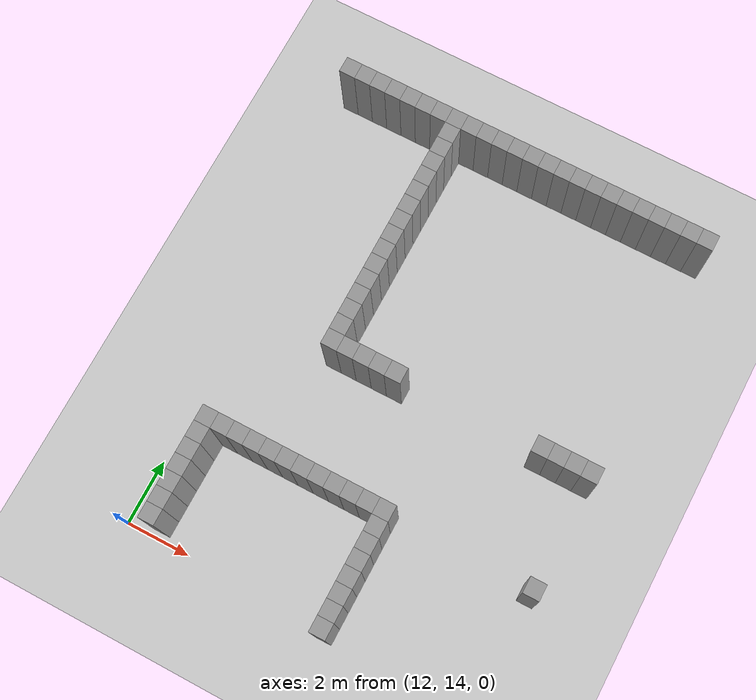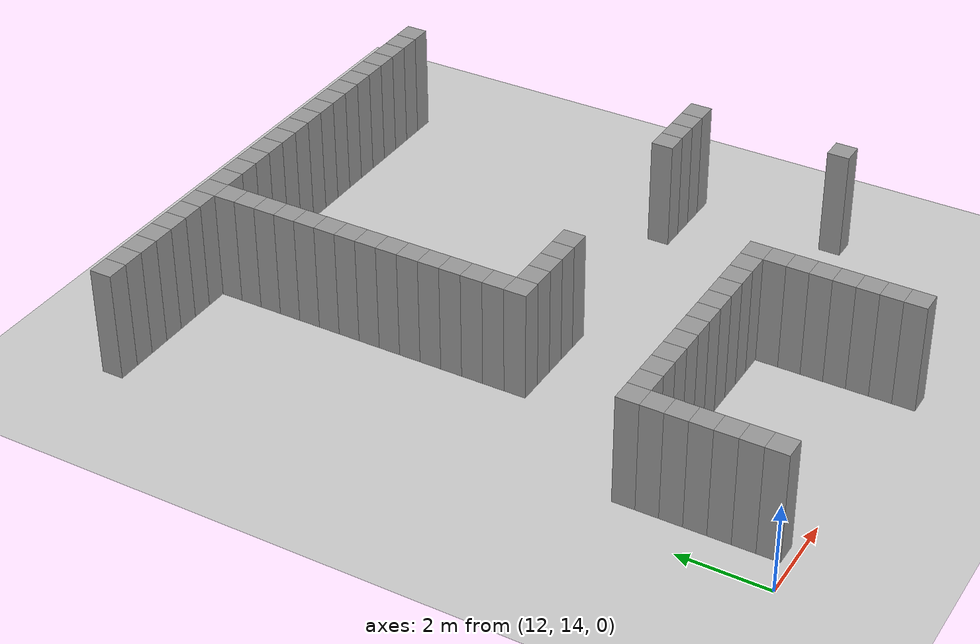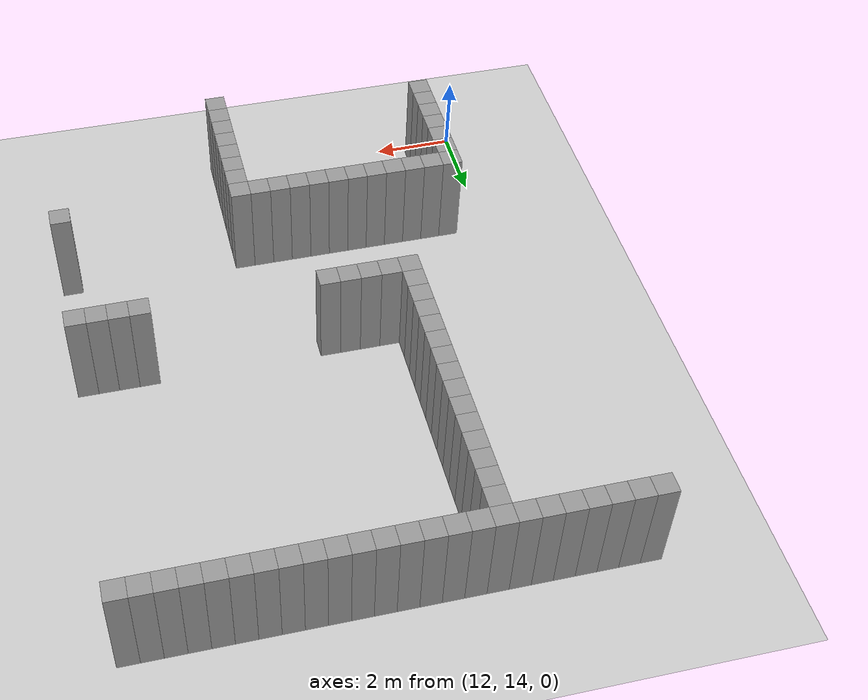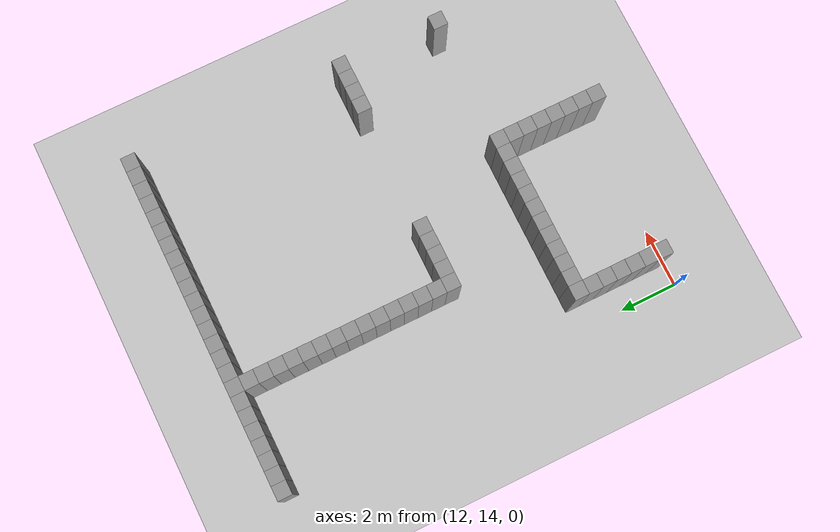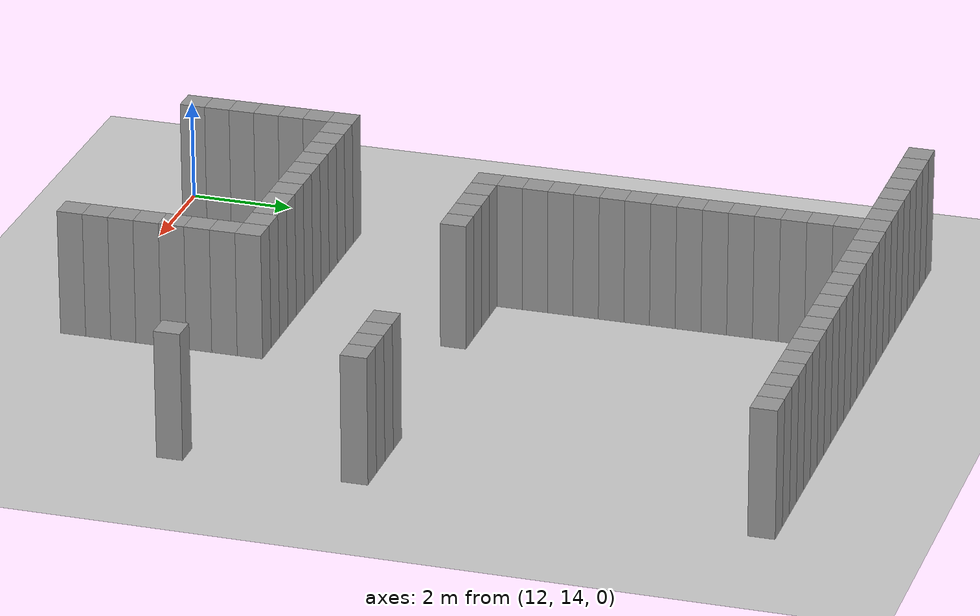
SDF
<sdf version="1.7">
 <world name="default">
  <model name="ground_plane">
   <static>1</static>
   <link name="link">
    <collision name="collision">
     <geometry><plane><normal>0 0 1</normal><size>100 100</size></plane></geometry>
     <surface>
      <contact><collide_bitmask>65535</collide_bitmask></contact>
      <friction><ode><mu>100</mu><mu2>50</mu2></ode></friction>
     </surface>
    </collision>
    <visual name="visual">
     <cast_shadows>0</cast_shadows>
     <geometry><plane><normal>0 0 1</normal><size>100 100</size></plane></geometry>
     <material>
      <script><uri>file://media/materials/scripts/gazebo.material</uri><name>Gazebo/Grey</name></script>
     </material>
    </visual>
   </link>
  </model>
  <model name="image1">
   <pose>-0.980925 -1.04264 0 0 -0 0</pose>
   <link name="Wall_218">
    <collision name="Wall_218_Collision">
     <geometry><box><size>0.5 0.5 2.5</size></box></geometry>
     <pose>0 0 1.25 0 -0 0</pose>
    </collision>
    <visual name="Wall_218_Visual">
     <pose>0 0 1.25 0 -0 0</pose>
     <geometry><box><size>0.5 0.5 2.5</size></box></geometry>
     <material>
      <script><uri>file://media/materials/scripts/gazebo.material</uri><name>Gazebo/Grey</name></script>
      <ambient>1 1 1 1</ambient>
     </material>
     <meta><layer>0</layer></meta>
    </visual>
    <pose>12.5 29.5 0 0 -0 0</pose>
   </link>
   <link name="Wall_220">
    <collision name="Wall_220_Collision">
     <geometry><box><size>0.5 0.5 2.5</size></box></geometry>
     <pose>0 0 1.25 0 -0 0</pose>
    </collision>
    <visual name="Wall_220_Visual">
     <pose>0 0 1.25 0 -0 0</pose>
     <geometry><box><size>0.5 0.5 2.5</size></box></geometry>
     <material>
      <script><uri>file://media/materials/scripts/gazebo.material</uri><name>Gazebo/Grey</name></script>
      <ambient>1 1 1 1</ambient>
     </material>
     <meta><layer>0</layer></meta>
    </visual>
    <pose>13 29.5 0 0 -0 0</pose>
   </link>
   <link name="Wall_223">
    <collision name="Wall_223_Collision">
     <geometry><box><size>0.5 0.5 2.5</size></box></geometry>
     <pose>0 0 1.25 0 -0 0</pose>
    </collision>
    <visual name="Wall_223_Visual">
     <pose>0 0 1.25 0 -0 0</pose>
     <geometry><box><size>0.5 0.5 2.5</size></box></geometry>
     <material>
      <script><uri>file://media/materials/scripts/gazebo.material</uri><name>Gazebo/Grey</name></script>
      <ambient>1 1 1 1</ambient>
     </material>
     <meta><layer>0</layer></meta>
    </visual>
    <pose>13.5 29.5 0 0 -0 0</pose>
   </link>
   <link name="Wall_248">
    <collision name="Wall_248_Collision">
     <geometry><box><size>0.5 0.5 2.5</size></box></geometry>
     <pose>0 0 1.25 0 -0 0</pose>
    </collision>
    <visual name="Wall_248_Visual">
     <pose>0 0 1.25 0 -0 0</pose>
     <geometry><box><size>0.5 0.5 2.5</size></box></geometry>
     <material>
      <script><uri>file://media/materials/scripts/gazebo.material</uri><name>Gazebo/Grey</name></script>
      <ambient>1 1 1 1</ambient>
     </material>
     <meta><layer>0</layer></meta>
    </visual>
    <pose>14 15.5 0 0 -0 0</pose>
   </link>
   <link name="Wall_249">
    <collision name="Wall_249_Collision">
     <geometry><box><size>0.5 0.5 2.5</size></box></geometry>
     <pose>0 0 1.25 0 -0 0</pose>
    </collision>
    <visual name="Wall_249_Visual">
     <pose>0 0 1.25 0 -0 0</pose>
     <geometry><box><size>0.5 0.5 2.5</size></box></geometry>
     <material>
      <script><uri>file://media/materials/scripts/gazebo.material</uri><name>Gazebo/Grey</name></script>
      <ambient>1 1 1 1</ambient>
     </material>
     <meta><layer>0</layer></meta>
    </visual>
    <pose>14 16 0 0 -0 0</pose>
   </link>
   <link name="Wall_250">
    <collision name="Wall_250_Collision">
     <geometry><box><size>0.5 0.5 2.5</size></box></geometry>
     <pose>0 0 1.25 0 -0 0</pose>
    </collision>
    <visual name="Wall_250_Visual">
     <pose>0 0 1.25 0 -0 0</pose>
     <geometry><box><size>0.5 0.5 2.5</size></box></geometry>
     <material>
      <script><uri>file://media/materials/scripts/gazebo.material</uri><name>Gazebo/Grey</name></script>
      <ambient>1 1 1 1</ambient>
     </material>
     <meta><layer>0</layer></meta>
    </visual>
    <pose>14 16.5 0 0 -0 0</pose>
   </link>
   <link name="Wall_251">
    <collision name="Wall_251_Collision">
     <geometry><box><size>0.5 0.5 2.5</size></box></geometry>
     <pose>0 0 1.25 0 -0 0</pose>
    </collision>
    <visual name="Wall_251_Visual">
     <pose>0 0 1.25 0 -0 0</pose>
     <geometry><box><size>0.5 0.5 2.5</size></box></geometry>
     <material>
      <script><uri>file://media/materials/scripts/gazebo.material</uri><name>Gazebo/Grey</name></script>
      <ambient>1 1 1 1</ambient>
     </material>
     <meta><layer>0</layer></meta>
    </visual>
    <pose>14 17 0 0 -0 0</pose>
   </link>
   <link name="Wall_252">
    <collision name="Wall_252_Collision">
     <geometry><box><size>0.5 0.5 2.5</size></box></geometry>
     <pose>0 0 1.25 0 -0 0</pose>
    </collision>
    <visual name="Wall_252_Visual">
     <pose>0 0 1.25 0 -0 0</pose>
     <geometry><box><size>0.5 0.5 2.5</size></box></geometry>
     <material>
      <script><uri>file://media/materials/scripts/gazebo.material</uri><name>Gazebo/Grey</name></script>
      <ambient>1 1 1 1</ambient>
     </material>
     <meta><layer>0</layer></meta>
    </visual>
    <pose>14 17.5 0 0 -0 0</pose>
   </link>
   <link name="Wall_253">
    <collision name="Wall_253_Collision">
     <geometry><box><size>0.5 0.5 2.5</size></box></geometry>
     <pose>0 0 1.25 0 -0 0</pose>
    </collision>
    <visual name="Wall_253_Visual">
     <pose>0 0 1.25 0 -0 0</pose>
     <geometry><box><size>0.5 0.5 2.5</size></box></geometry>
     <material>
      <script><uri>file://media/materials/scripts/gazebo.material</uri><name>Gazebo/Grey</name></script>
      <ambient>1 1 1 1</ambient>
     </material>
     <meta><layer>0</layer></meta>
    </visual>
    <pose>14 18 0 0 -0 0</pose>
   </link>
   <link name="Wall_254">
    <collision name="Wall_254_Collision">
     <geometry><box><size>0.5 0.5 2.5</size></box></geometry>
     <pose>0 0 1.25 0 -0 0</pose>
    </collision>
    <visual name="Wall_254_Visual">
     <pose>0 0 1.25 0 -0 0</pose>
     <geometry><box><size>0.5 0.5 2.5</size></box></geometry>
     <material>
      <script><uri>file://media/materials/scripts/gazebo.material</uri><name>Gazebo/Grey</name></script>
      <ambient>1 1 1 1</ambient>
     </material>
     <meta><layer>0</layer></meta>
    </visual>
    <pose>14 18.5 0 0 -0 0</pose>
   </link>
   <link name="Wall_255">
    <collision name="Wall_255_Collision">
     <geometry><box><size>0.5 0.5 2.5</size></box></geometry>
     <pose>0 0 1.25 0 -0 0</pose>
    </collision>
    <visual name="Wall_255_Visual">
     <pose>0 0 1.25 0 -0 0</pose>
     <geometry><box><size>0.5 0.5 2.5</size></box></geometry>
     <material>
      <script><uri>file://media/materials/scripts/gazebo.material</uri><name>Gazebo/Grey</name></script>
      <ambient>1 1 1 1</ambient>
     </material>
     <meta><layer>0</layer></meta>
    </visual>
    <pose>14 29.5 0 0 -0 0</pose>
   </link>
   <link name="Wall_257">
    <collision name="Wall_257_Collision">
     <geometry><box><size>0.5 0.5 2.5</size></box></geometry>
     <pose>0 0 1.25 0 -0 0</pose>
    </collision>
    <visual name="Wall_257_Visual">
     <pose>0 0 1.25 0 -0 0</pose>
     <geometry><box><size>0.5 0.5 2.5</size></box></geometry>
     <material>
      <script><uri>file://media/materials/scripts/gazebo.material</uri><name>Gazebo/Grey</name></script>
      <ambient>1 1 1 1</ambient>
     </material>
     <meta><layer>0</layer></meta>
    </visual>
    <pose>14.5 18.5 0 0 -0 0</pose>
   </link>
   <link name="Wall_258">
    <collision name="Wall_258_Collision">
     <geometry><box><size>0.5 0.5 2.5</size></box></geometry>
     <pose>0 0 1.25 0 -0 0</pose>
    </collision>
    <visual name="Wall_258_Visual">
     <pose>0 0 1.25 0 -0 0</pose>
     <geometry><box><size>0.5 0.5 2.5</size></box></geometry>
     <material>
      <script><uri>file://media/materials/scripts/gazebo.material</uri><name>Gazebo/Grey</name></script>
      <ambient>1 1 1 1</ambient>
     </material>
     <meta><layer>0</layer></meta>
    </visual>
    <pose>14.5 29.5 0 0 -0 0</pose>
   </link>
   <link name="Wall_260">
    <collision name="Wall_260_Collision">
     <geometry><box><size>0.5 0.5 2.5</size></box></geometry>
     <pose>0 0 1.25 0 -0 0</pose>
    </collision>
    <visual name="Wall_260_Visual">
     <pose>0 0 1.25 0 -0 0</pose>
     <geometry><box><size>0.5 0.5 2.5</size></box></geometry>
     <material>
      <script><uri>file://media/materials/scripts/gazebo.material</uri><name>Gazebo/Grey</name></script>
      <ambient>1 1 1 1</ambient>
     </material>
     <meta><layer>0</layer></meta>
    </visual>
    <pose>15 18.5 0 0 -0 0</pose>
   </link>
   <link name="Wall_261">
    <collision name="Wall_261_Collision">
     <geometry><box><size>0.5 0.5 2.5</size></box></geometry>
     <pose>0 0 1.25 0 -0 0</pose>
    </collision>
    <visual name="Wall_261_Visual">
     <pose>0 0 1.25 0 -0 0</pose>
     <geometry><box><size>0.5 0.5 2.5</size></box></geometry>
     <material>
      <script><uri>file://media/materials/scripts/gazebo.material</uri><name>Gazebo/Grey</name></script>
      <ambient>1 1 1 1</ambient>
     </material>
     <meta><layer>0</layer></meta>
    </visual>
    <pose>15 29.5 0 0 -0 0</pose>
   </link>
   <link name="Wall_263">
    <collision name="Wall_263_Collision">
     <geometry><box><size>0.5 0.5 2.5</size></box></geometry>
     <pose>0 0 1.25 0 -0 0</pose>
    </collision>
    <visual name="Wall_263_Visual">
     <pose>0 0 1.25 0 -0 0</pose>
     <geometry><box><size>0.5 0.5 2.5</size></box></geometry>
     <material>
      <script><uri>file://media/materials/scripts/gazebo.material</uri><name>Gazebo/Grey</name></script>
      <ambient>1 1 1 1</ambient>
     </material>
     <meta><layer>0</layer></meta>
    </visual>
    <pose>15.5 18.5 0 0 -0 0</pose>
   </link>
   <link name="Wall_264">
    <collision name="Wall_264_Collision">
     <geometry><box><size>0.5 0.5 2.5</size></box></geometry>
     <pose>0 0 1.25 0 -0 0</pose>
    </collision>
    <visual name="Wall_264_Visual">
     <pose>0 0 1.25 0 -0 0</pose>
     <geometry><box><size>0.5 0.5 2.5</size></box></geometry>
     <material>
      <script><uri>file://media/materials/scripts/gazebo.material</uri><name>Gazebo/Grey</name></script>
      <ambient>1 1 1 1</ambient>
     </material>
     <meta><layer>0</layer></meta>
    </visual>
    <pose>15.5 29.5 0 0 -0 0</pose>
   </link>
   <link name="Wall_266">
    <collision name="Wall_266_Collision">
     <geometry><box><size>0.5 0.5 2.5</size></box></geometry>
     <pose>0 0 1.25 0 -0 0</pose>
    </collision>
    <visual name="Wall_266_Visual">
     <pose>0 0 1.25 0 -0 0</pose>
     <geometry><box><size>0.5 0.5 2.5</size></box></geometry>
     <material>
      <script><uri>file://media/materials/scripts/gazebo.material</uri><name>Gazebo/Grey</name></script>
      <ambient>1 1 1 1</ambient>
     </material>
     <meta><layer>0</layer></meta>
    </visual>
    <pose>16 18.5 0 0 -0 0</pose>
   </link>
   <link name="Wall_267">
    <collision name="Wall_267_Collision">
     <geometry><box><size>0.5 0.5 2.5</size></box></geometry>
     <pose>0 0 1.25 0 -0 0</pose>
    </collision>
    <visual name="Wall_267_Visual">
     <pose>0 0 1.25 0 -0 0</pose>
     <geometry><box><size>0.5 0.5 2.5</size></box></geometry>
     <material>
      <script><uri>file://media/materials/scripts/gazebo.material</uri><name>Gazebo/Grey</name></script>
      <ambient>1 1 1 1</ambient>
     </material>
     <meta><layer>0</layer></meta>
    </visual>
    <pose>16 22 0 0 -0 0</pose>
   </link>
   <link name="Wall_268">
    <collision name="Wall_268_Collision">
     <geometry><box><size>0.5 0.5 2.5</size></box></geometry>
     <pose>0 0 1.25 0 -0 0</pose>
    </collision>
    <visual name="Wall_268_Visual">
     <pose>0 0 1.25 0 -0 0</pose>
     <geometry><box><size>0.5 0.5 2.5</size></box></geometry>
     <material>
      <script><uri>file://media/materials/scripts/gazebo.material</uri><name>Gazebo/Grey</name></script>
      <ambient>1 1 1 1</ambient>
     </material>
     <meta><layer>0</layer></meta>
    </visual>
    <pose>16 22.5 0 0 -0 0</pose>
   </link>
   <link name="Wall_269">
    <collision name="Wall_269_Collision">
     <geometry><box><size>0.5 0.5 2.5</size></box></geometry>
     <pose>0 0 1.25 0 -0 0</pose>
    </collision>
    <visual name="Wall_269_Visual">
     <pose>0 0 1.25 0 -0 0</pose>
     <geometry><box><size>0.5 0.5 2.5</size></box></geometry>
     <material>
      <script><uri>file://media/materials/scripts/gazebo.material</uri><name>Gazebo/Grey</name></script>
      <ambient>1 1 1 1</ambient>
     </material>
     <meta><layer>0</layer></meta>
    </visual>
    <pose>16 23 0 0 -0 0</pose>
   </link>
   <link name="Wall_270">
    <collision name="Wall_270_Collision">
     <geometry><box><size>0.5 0.5 2.5</size></box></geometry>
     <pose>0 0 1.25 0 -0 0</pose>
    </collision>
    <visual name="Wall_270_Visual">
     <pose>0 0 1.25 0 -0 0</pose>
     <geometry><box><size>0.5 0.5 2.5</size></box></geometry>
     <material>
      <script><uri>file://media/materials/scripts/gazebo.material</uri><name>Gazebo/Grey</name></script>
      <ambient>1 1 1 1</ambient>
     </material>
     <meta><layer>0</layer></meta>
    </visual>
    <pose>16 23.5 0 0 -0 0</pose>
   </link>
   <link name="Wall_271">
    <collision name="Wall_271_Collision">
     <geometry><box><size>0.5 0.5 2.5</size></box></geometry>
     <pose>0 0 1.25 0 -0 0</pose>
    </collision>
    <visual name="Wall_271_Visual">
     <pose>0 0 1.25 0 -0 0</pose>
     <geometry><box><size>0.5 0.5 2.5</size></box></geometry>
     <material>
      <script><uri>file://media/materials/scripts/gazebo.material</uri><name>Gazebo/Grey</name></script>
      <ambient>1 1 1 1</ambient>
     </material>
     <meta><layer>0</layer></meta>
    </visual>
    <pose>16 24 0 0 -0 0</pose>
   </link>
   <link name="Wall_272">
    <collision name="Wall_272_Collision">
     <geometry><box><size>0.5 0.5 2.5</size></box></geometry>
     <pose>0 0 1.25 0 -0 0</pose>
    </collision>
    <visual name="Wall_272_Visual">
     <pose>0 0 1.25 0 -0 0</pose>
     <geometry><box><size>0.5 0.5 2.5</size></box></geometry>
     <material>
      <script><uri>file://media/materials/scripts/gazebo.material</uri><name>Gazebo/Grey</name></script>
      <ambient>1 1 1 1</ambient>
     </material>
     <meta><layer>0</layer></meta>
    </visual>
    <pose>16 24.5 0 0 -0 0</pose>
   </link>
   <link name="Wall_273">
    <collision name="Wall_273_Collision">
     <geometry><box><size>0.5 0.5 2.5</size></box></geometry>
     <pose>0 0 1.25 0 -0 0</pose>
    </collision>
    <visual name="Wall_273_Visual">
     <pose>0 0 1.25 0 -0 0</pose>
     <geometry><box><size>0.5 0.5 2.5</size></box></geometry>
     <material>
      <script><uri>file://media/materials/scripts/gazebo.material</uri><name>Gazebo/Grey</name></script>
      <ambient>1 1 1 1</ambient>
     </material>
     <meta><layer>0</layer></meta>
    </visual>
    <pose>16 25 0 0 -0 0</pose>
   </link>
   <link name="Wall_274">
    <collision name="Wall_274_Collision">
     <geometry><box><size>0.5 0.5 2.5</size></box></geometry>
     <pose>0 0 1.25 0 -0 0</pose>
    </collision>
    <visual name="Wall_274_Visual">
     <pose>0 0 1.25 0 -0 0</pose>
     <geometry><box><size>0.5 0.5 2.5</size></box></geometry>
     <material>
      <script><uri>file://media/materials/scripts/gazebo.material</uri><name>Gazebo/Grey</name></script>
      <ambient>1 1 1 1</ambient>
     </material>
     <meta><layer>0</layer></meta>
    </visual>
    <pose>16 25.5 0 0 -0 0</pose>
   </link>
   <link name="Wall_275">
    <collision name="Wall_275_Collision">
     <geometry><box><size>0.5 0.5 2.5</size></box></geometry>
     <pose>0 0 1.25 0 -0 0</pose>
    </collision>
    <visual name="Wall_275_Visual">
     <pose>0 0 1.25 0 -0 0</pose>
     <geometry><box><size>0.5 0.5 2.5</size></box></geometry>
     <material>
      <script><uri>file://media/materials/scripts/gazebo.material</uri><name>Gazebo/Grey</name></script>
      <ambient>1 1 1 1</ambient>
     </material>
     <meta><layer>0</layer></meta>
    </visual>
    <pose>16 26 0 0 -0 0</pose>
   </link>
   <link name="Wall_276">
    <collision name="Wall_276_Collision">
     <geometry><box><size>0.5 0.5 2.5</size></box></geometry>
     <pose>0 0 1.25 0 -0 0</pose>
    </collision>
    <visual name="Wall_276_Visual">
     <pose>0 0 1.25 0 -0 0</pose>
     <geometry><box><size>0.5 0.5 2.5</size></box></geometry>
     <material>
      <script><uri>file://media/materials/scripts/gazebo.material</uri><name>Gazebo/Grey</name></script>
      <ambient>1 1 1 1</ambient>
     </material>
     <meta><layer>0</layer></meta>
    </visual>
    <pose>16 26.5 0 0 -0 0</pose>
   </link>
   <link name="Wall_277">
    <collision name="Wall_277_Collision">
     <geometry><box><size>0.5 0.5 2.5</size></box></geometry>
     <pose>0 0 1.25 0 -0 0</pose>
    </collision>
    <visual name="Wall_277_Visual">
     <pose>0 0 1.25 0 -0 0</pose>
     <geometry><box><size>0.5 0.5 2.5</size></box></geometry>
     <material>
      <script><uri>file://media/materials/scripts/gazebo.material</uri><name>Gazebo/Grey</name></script>
      <ambient>1 1 1 1</ambient>
     </material>
     <meta><layer>0</layer></meta>
    </visual>
    <pose>16 27 0 0 -0 0</pose>
   </link>
   <link name="Wall_278">
    <collision name="Wall_278_Collision">
     <geometry><box><size>0.5 0.5 2.5</size></box></geometry>
     <pose>0 0 1.25 0 -0 0</pose>
    </collision>
    <visual name="Wall_278_Visual">
     <pose>0 0 1.25 0 -0 0</pose>
     <geometry><box><size>0.5 0.5 2.5</size></box></geometry>
     <material>
      <script><uri>file://media/materials/scripts/gazebo.material</uri><name>Gazebo/Grey</name></script>
      <ambient>1 1 1 1</ambient>
     </material>
     <meta><layer>0</layer></meta>
    </visual>
    <pose>16 27.5 0 0 -0 0</pose>
   </link>
   <link name="Wall_279">
    <collision name="Wall_279_Collision">
     <geometry><box><size>0.5 0.5 2.5</size></box></geometry>
     <pose>0 0 1.25 0 -0 0</pose>
    </collision>
    <visual name="Wall_279_Visual">
     <pose>0 0 1.25 0 -0 0</pose>
     <geometry><box><size>0.5 0.5 2.5</size></box></geometry>
     <material>
      <script><uri>file://media/materials/scripts/gazebo.material</uri><name>Gazebo/Grey</name></script>
      <ambient>1 1 1 1</ambient>
     </material>
     <meta><layer>0</layer></meta>
    </visual>
    <pose>16 28 0 0 -0 0</pose>
   </link>
   <link name="Wall_280">
    <collision name="Wall_280_Collision">
     <geometry><box><size>0.5 0.5 2.5</size></box></geometry>
     <pose>0 0 1.25 0 -0 0</pose>
    </collision>
    <visual name="Wall_280_Visual">
     <pose>0 0 1.25 0 -0 0</pose>
     <geometry><box><size>0.5 0.5 2.5</size></box></geometry>
     <material>
      <script><uri>file://media/materials/scripts/gazebo.material</uri><name>Gazebo/Grey</name></script>
      <ambient>1 1 1 1</ambient>
     </material>
     <meta><layer>0</layer></meta>
    </visual>
    <pose>16 28.5 0 0 -0 0</pose>
   </link>
   <link name="Wall_281">
    <collision name="Wall_281_Collision">
     <geometry><box><size>0.5 0.5 2.5</size></box></geometry>
     <pose>0 0 1.25 0 -0 0</pose>
    </collision>
    <visual name="Wall_281_Visual">
     <pose>0 0 1.25 0 -0 0</pose>
     <geometry><box><size>0.5 0.5 2.5</size></box></geometry>
     <material>
      <script><uri>file://media/materials/scripts/gazebo.material</uri><name>Gazebo/Grey</name></script>
      <ambient>1 1 1 1</ambient>
     </material>
     <meta><layer>0</layer></meta>
    </visual>
    <pose>16 29 0 0 -0 0</pose>
   </link>
   <link name="Wall_282">
    <collision name="Wall_282_Collision">
     <geometry><box><size>0.5 0.5 2.5</size></box></geometry>
     <pose>0 0 1.25 0 -0 0</pose>
    </collision>
    <visual name="Wall_282_Visual">
     <pose>0 0 1.25 0 -0 0</pose>
     <geometry><box><size>0.5 0.5 2.5</size></box></geometry>
     <material>
      <script><uri>file://media/materials/scripts/gazebo.material</uri><name>Gazebo/Grey</name></script>
      <ambient>1 1 1 1</ambient>
     </material>
     <meta><layer>0</layer></meta>
    </visual>
    <pose>16 29.5 0 0 -0 0</pose>
   </link>
   <link name="Wall_284">
    <collision name="Wall_284_Collision">
     <geometry><box><size>0.5 0.5 2.5</size></box></geometry>
     <pose>0 0 1.25 0 -0 0</pose>
    </collision>
    <visual name="Wall_284_Visual">
     <pose>0 0 1.25 0 -0 0</pose>
     <geometry><box><size>0.5 0.5 2.5</size></box></geometry>
     <material>
      <script><uri>file://media/materials/scripts/gazebo.material</uri><name>Gazebo/Grey</name></script>
      <ambient>1 1 1 1</ambient>
     </material>
     <meta><layer>0</layer></meta>
    </visual>
    <pose>16.5 18.5 0 0 -0 0</pose>
   </link>
   <link name="Wall_285">
    <collision name="Wall_285_Collision">
     <geometry><box><size>0.5 0.5 2.5</size></box></geometry>
     <pose>0 0 1.25 0 -0 0</pose>
    </collision>
    <visual name="Wall_285_Visual">
     <pose>0 0 1.25 0 -0 0</pose>
     <geometry><box><size>0.5 0.5 2.5</size></box></geometry>
     <material>
      <script><uri>file://media/materials/scripts/gazebo.material</uri><name>Gazebo/Grey</name></script>
      <ambient>1 1 1 1</ambient>
     </material>
     <meta><layer>0</layer></meta>
    </visual>
    <pose>16.5 22 0 0 -0 0</pose>
   </link>
   <link name="Wall_286">
    <collision name="Wall_286_Collision">
     <geometry><box><size>0.5 0.5 2.5</size></box></geometry>
     <pose>0 0 1.25 0 -0 0</pose>
    </collision>
    <visual name="Wall_286_Visual">
     <pose>0 0 1.25 0 -0 0</pose>
     <geometry><box><size>0.5 0.5 2.5</size></box></geometry>
     <material>
      <script><uri>file://media/materials/scripts/gazebo.material</uri><name>Gazebo/Grey</name></script>
      <ambient>1 1 1 1</ambient>
     </material>
     <meta><layer>0</layer></meta>
    </visual>
    <pose>16.5 29.5 0 0 -0 0</pose>
   </link>
   <link name="Wall_288">
    <collision name="Wall_288_Collision">
     <geometry><box><size>0.5 0.5 2.5</size></box></geometry>
     <pose>0 0 1.25 0 -0 0</pose>
    </collision>
    <visual name="Wall_288_Visual">
     <pose>0 0 1.25 0 -0 0</pose>
     <geometry><box><size>0.5 0.5 2.5</size></box></geometry>
     <material>
      <script><uri>file://media/materials/scripts/gazebo.material</uri><name>Gazebo/Grey</name></script>
      <ambient>1 1 1 1</ambient>
     </material>
     <meta><layer>0</layer></meta>
    </visual>
    <pose>17 18.5 0 0 -0 0</pose>
   </link>
   <link name="Wall_289">
    <collision name="Wall_289_Collision">
     <geometry><box><size>0.5 0.5 2.5</size></box></geometry>
     <pose>0 0 1.25 0 -0 0</pose>
    </collision>
    <visual name="Wall_289_Visual">
     <pose>0 0 1.25 0 -0 0</pose>
     <geometry><box><size>0.5 0.5 2.5</size></box></geometry>
     <material>
      <script><uri>file://media/materials/scripts/gazebo.material</uri><name>Gazebo/Grey</name></script>
      <ambient>1 1 1 1</ambient>
     </material>
     <meta><layer>0</layer></meta>
    </visual>
    <pose>17 22 0 0 -0 0</pose>
   </link>
   <link name="Wall_290">
    <collision name="Wall_290_Collision">
     <geometry><box><size>0.5 0.5 2.5</size></box></geometry>
     <pose>0 0 1.25 0 -0 0</pose>
    </collision>
    <visual name="Wall_290_Visual">
     <pose>0 0 1.25 0 -0 0</pose>
     <geometry><box><size>0.5 0.5 2.5</size></box></geometry>
     <material>
      <script><uri>file://media/materials/scripts/gazebo.material</uri><name>Gazebo/Grey</name></script>
      <ambient>1 1 1 1</ambient>
     </material>
     <meta><layer>0</layer></meta>
    </visual>
    <pose>17 29.5 0 0 -0 0</pose>
   </link>
   <link name="Wall_292">
    <collision name="Wall_292_Collision">
     <geometry><box><size>0.5 0.5 2.5</size></box></geometry>
     <pose>0 0 1.25 0 -0 0</pose>
    </collision>
    <visual name="Wall_292_Visual">
     <pose>0 0 1.25 0 -0 0</pose>
     <geometry><box><size>0.5 0.5 2.5</size></box></geometry>
     <material>
      <script><uri>file://media/materials/scripts/gazebo.material</uri><name>Gazebo/Grey</name></script>
      <ambient>1 1 1 1</ambient>
     </material>
     <meta><layer>0</layer></meta>
    </visual>
    <pose>17.5 18.5 0 0 -0 0</pose>
   </link>
   <link name="Wall_293">
    <collision name="Wall_293_Collision">
     <geometry><box><size>0.5 0.5 2.5</size></box></geometry>
     <pose>0 0 1.25 0 -0 0</pose>
    </collision>
    <visual name="Wall_293_Visual">
     <pose>0 0 1.25 0 -0 0</pose>
     <geometry><box><size>0.5 0.5 2.5</size></box></geometry>
     <material>
      <script><uri>file://media/materials/scripts/gazebo.material</uri><name>Gazebo/Grey</name></script>
      <ambient>1 1 1 1</ambient>
     </material>
     <meta><layer>0</layer></meta>
    </visual>
    <pose>17.5 22 0 0 -0 0</pose>
   </link>
   <link name="Wall_294">
    <collision name="Wall_294_Collision">
     <geometry><box><size>0.5 0.5 2.5</size></box></geometry>
     <pose>0 0 1.25 0 -0 0</pose>
    </collision>
    <visual name="Wall_294_Visual">
     <pose>0 0 1.25 0 -0 0</pose>
     <geometry><box><size>0.5 0.5 2.5</size></box></geometry>
     <material>
      <script><uri>file://media/materials/scripts/gazebo.material</uri><name>Gazebo/Grey</name></script>
      <ambient>1 1 1 1</ambient>
     </material>
     <meta><layer>0</layer></meta>
    </visual>
    <pose>17.5 29.5 0 0 -0 0</pose>
   </link>
   <link name="Wall_296">
    <collision name="Wall_296_Collision">
     <geometry><box><size>0.5 0.5 2.5</size></box></geometry>
     <pose>0 0 1.25 0 -0 0</pose>
    </collision>
    <visual name="Wall_296_Visual">
     <pose>0 0 1.25 0 -0 0</pose>
     <geometry><box><size>0.5 0.5 2.5</size></box></geometry>
     <material>
      <script><uri>file://media/materials/scripts/gazebo.material</uri><name>Gazebo/Grey</name></script>
      <ambient>1 1 1 1</ambient>
     </material>
     <meta><layer>0</layer></meta>
    </visual>
    <pose>18 18.5 0 0 -0 0</pose>
   </link>
   <link name="Wall_297">
    <collision name="Wall_297_Collision">
     <geometry><box><size>0.5 0.5 2.5</size></box></geometry>
     <pose>0 0 1.25 0 -0 0</pose>
    </collision>
    <visual name="Wall_297_Visual">
     <pose>0 0 1.25 0 -0 0</pose>
     <geometry><box><size>0.5 0.5 2.5</size></box></geometry>
     <material>
      <script><uri>file://media/materials/scripts/gazebo.material</uri><name>Gazebo/Grey</name></script>
      <ambient>1 1 1 1</ambient>
     </material>
     <meta><layer>0</layer></meta>
    </visual>
    <pose>18 22 0 0 -0 0</pose>
   </link>
   <link name="Wall_298">
    <collision name="Wall_298_Collision">
     <geometry><box><size>0.5 0.5 2.5</size></box></geometry>
     <pose>0 0 1.25 0 -0 0</pose>
    </collision>
    <visual name="Wall_298_Visual">
     <pose>0 0 1.25 0 -0 0</pose>
     <geometry><box><size>0.5 0.5 2.5</size></box></geometry>
     <material>
      <script><uri>file://media/materials/scripts/gazebo.material</uri><name>Gazebo/Grey</name></script>
      <ambient>1 1 1 1</ambient>
     </material>
     <meta><layer>0</layer></meta>
    </visual>
    <pose>18 29.5 0 0 -0 0</pose>
   </link>
   <link name="Wall_319">
    <collision name="Wall_319_Collision">
     <geometry><box><size>0.5 0.5 2.5</size></box></geometry>
     <pose>0 0 1.25 0 -0 0</pose>
    </collision>
    <visual name="Wall_319_Visual">
     <pose>0 0 1.25 0 -0 0</pose>
     <geometry><box><size>0.5 0.5 2.5</size></box></geometry>
     <material>
      <script><uri>file://media/materials/scripts/gazebo.material</uri><name>Gazebo/Grey</name></script>
      <ambient>1 1 1 1</ambient>
     </material>
     <meta><layer>0</layer></meta>
    </visual>
    <pose>18.5 18.5 0 0 -0 0</pose>
   </link>
   <link name="Wall_320">
    <collision name="Wall_320_Collision">
     <geometry><box><size>0.5 0.5 2.5</size></box></geometry>
     <pose>0 0 1.25 0 -0 0</pose>
    </collision>
    <visual name="Wall_320_Visual">
     <pose>0 0 1.25 0 -0 0</pose>
     <geometry><box><size>0.5 0.5 2.5</size></box></geometry>
     <material>
      <script><uri>file://media/materials/scripts/gazebo.material</uri><name>Gazebo/Grey</name></script>
      <ambient>1 1 1 1</ambient>
     </material>
     <meta><layer>0</layer></meta>
    </visual>
    <pose>18.5 29.5 0 0 -0 0</pose>
   </link>
   <link name="Wall_324">
    <collision name="Wall_324_Collision">
     <geometry><box><size>0.5 0.5 2.5</size></box></geometry>
     <pose>0 0 1.25 0 -0 0</pose>
    </collision>
    <visual name="Wall_324_Visual">
     <pose>0 0 1.25 0 -0 0</pose>
     <geometry><box><size>0.5 0.5 2.5</size></box></geometry>
     <material>
      <script><uri>file://media/materials/scripts/gazebo.material</uri><name>Gazebo/Grey</name></script>
      <ambient>1 1 1 1</ambient>
     </material>
     <meta><layer>0</layer></meta>
    </visual>
    <pose>19 18.5 0 0 -0 0</pose>
   </link>
   <link name="Wall_325">
    <collision name="Wall_325_Collision">
     <geometry><box><size>0.5 0.5 2.5</size></box></geometry>
     <pose>0 0 1.25 0 -0 0</pose>
    </collision>
    <visual name="Wall_325_Visual">
     <pose>0 0 1.25 0 -0 0</pose>
     <geometry><box><size>0.5 0.5 2.5</size></box></geometry>
     <material>
      <script><uri>file://media/materials/scripts/gazebo.material</uri><name>Gazebo/Grey</name></script>
      <ambient>1 1 1 1</ambient>
     </material>
     <meta><layer>0</layer></meta>
    </visual>
    <pose>19 29.5 0 0 -0 0</pose>
   </link>
   <link name="Wall_332">
    <collision name="Wall_332_Collision">
     <geometry><box><size>0.5 0.5 2.5</size></box></geometry>
     <pose>0 0 1.25 0 -0 0</pose>
    </collision>
    <visual name="Wall_332_Visual">
     <pose>0 0 1.25 0 -0 0</pose>
     <geometry><box><size>0.5 0.5 2.5</size></box></geometry>
     <material>
      <script><uri>file://media/materials/scripts/gazebo.material</uri><name>Gazebo/Grey</name></script>
      <ambient>1 1 1 1</ambient>
     </material>
     <meta><layer>0</layer></meta>
    </visual>
    <pose>19.5 15 0 0 -0 0</pose>
   </link>
   <link name="Wall_333">
    <collision name="Wall_333_Collision">
     <geometry><box><size>0.5 0.5 2.5</size></box></geometry>
     <pose>0 0 1.25 0 -0 0</pose>
    </collision>
    <visual name="Wall_333_Visual">
     <pose>0 0 1.25 0 -0 0</pose>
     <geometry><box><size>0.5 0.5 2.5</size></box></geometry>
     <material>
      <script><uri>file://media/materials/scripts/gazebo.material</uri><name>Gazebo/Grey</name></script>
      <ambient>1 1 1 1</ambient>
     </material>
     <meta><layer>0</layer></meta>
    </visual>
    <pose>19.5 15.5 0 0 -0 0</pose>
   </link>
   <link name="Wall_334">
    <collision name="Wall_334_Collision">
     <geometry><box><size>0.5 0.5 2.5</size></box></geometry>
     <pose>0 0 1.25 0 -0 0</pose>
    </collision>
    <visual name="Wall_334_Visual">
     <pose>0 0 1.25 0 -0 0</pose>
     <geometry><box><size>0.5 0.5 2.5</size></box></geometry>
     <material>
      <script><uri>file://media/materials/scripts/gazebo.material</uri><name>Gazebo/Grey</name></script>
      <ambient>1 1 1 1</ambient>
     </material>
     <meta><layer>0</layer></meta>
    </visual>
    <pose>19.5 16 0 0 -0 0</pose>
   </link>
   <link name="Wall_335">
    <collision name="Wall_335_Collision">
     <geometry><box><size>0.5 0.5 2.5</size></box></geometry>
     <pose>0 0 1.25 0 -0 0</pose>
    </collision>
    <visual name="Wall_335_Visual">
     <pose>0 0 1.25 0 -0 0</pose>
     <geometry><box><size>0.5 0.5 2.5</size></box></geometry>
     <material>
      <script><uri>file://media/materials/scripts/gazebo.material</uri><name>Gazebo/Grey</name></script>
      <ambient>1 1 1 1</ambient>
     </material>
     <meta><layer>0</layer></meta>
    </visual>
    <pose>19.5 16.5 0 0 -0 0</pose>
   </link>
   <link name="Wall_336">
    <collision name="Wall_336_Collision">
     <geometry><box><size>0.5 0.5 2.5</size></box></geometry>
     <pose>0 0 1.25 0 -0 0</pose>
    </collision>
    <visual name="Wall_336_Visual">
     <pose>0 0 1.25 0 -0 0</pose>
     <geometry><box><size>0.5 0.5 2.5</size></box></geometry>
     <material>
      <script><uri>file://media/materials/scripts/gazebo.material</uri><name>Gazebo/Grey</name></script>
      <ambient>1 1 1 1</ambient>
     </material>
     <meta><layer>0</layer></meta>
    </visual>
    <pose>19.5 17 0 0 -0 0</pose>
   </link>
   <link name="Wall_337">
    <collision name="Wall_337_Collision">
     <geometry><box><size>0.5 0.5 2.5</size></box></geometry>
     <pose>0 0 1.25 0 -0 0</pose>
    </collision>
    <visual name="Wall_337_Visual">
     <pose>0 0 1.25 0 -0 0</pose>
     <geometry><box><size>0.5 0.5 2.5</size></box></geometry>
     <material>
      <script><uri>file://media/materials/scripts/gazebo.material</uri><name>Gazebo/Grey</name></script>
      <ambient>1 1 1 1</ambient>
     </material>
     <meta><layer>0</layer></meta>
    </visual>
    <pose>19.5 17.5 0 0 -0 0</pose>
   </link>
   <link name="Wall_338">
    <collision name="Wall_338_Collision">
     <geometry><box><size>0.5 0.5 2.5</size></box></geometry>
     <pose>0 0 1.25 0 -0 0</pose>
    </collision>
    <visual name="Wall_338_Visual">
     <pose>0 0 1.25 0 -0 0</pose>
     <geometry><box><size>0.5 0.5 2.5</size></box></geometry>
     <material>
      <script><uri>file://media/materials/scripts/gazebo.material</uri><name>Gazebo/Grey</name></script>
      <ambient>1 1 1 1</ambient>
     </material>
     <meta><layer>0</layer></meta>
    </visual>
    <pose>19.5 18 0 0 -0 0</pose>
   </link>
   <link name="Wall_339">
    <collision name="Wall_339_Collision">
     <geometry><box><size>0.5 0.5 2.5</size></box></geometry>
     <pose>0 0 1.25 0 -0 0</pose>
    </collision>
    <visual name="Wall_339_Visual">
     <pose>0 0 1.25 0 -0 0</pose>
     <geometry><box><size>0.5 0.5 2.5</size></box></geometry>
     <material>
      <script><uri>file://media/materials/scripts/gazebo.material</uri><name>Gazebo/Grey</name></script>
      <ambient>1 1 1 1</ambient>
     </material>
     <meta><layer>0</layer></meta>
    </visual>
    <pose>19.5 18.5 0 0 -0 0</pose>
   </link>
   <link name="Wall_340">
    <collision name="Wall_340_Collision">
     <geometry><box><size>0.5 0.5 2.5</size></box></geometry>
     <pose>0 0 1.25 0 -0 0</pose>
    </collision>
    <visual name="Wall_340_Visual">
     <pose>0 0 1.25 0 -0 0</pose>
     <geometry><box><size>0.5 0.5 2.5</size></box></geometry>
     <material>
      <script><uri>file://media/materials/scripts/gazebo.material</uri><name>Gazebo/Grey</name></script>
      <ambient>1 1 1 1</ambient>
     </material>
     <meta><layer>0</layer></meta>
    </visual>
    <pose>19.5 29.5 0 0 -0 0</pose>
   </link>
   <link name="Wall_343">
    <collision name="Wall_343_Collision">
     <geometry><box><size>0.5 0.5 2.5</size></box></geometry>
     <pose>0 0 1.25 0 -0 0</pose>
    </collision>
    <visual name="Wall_343_Visual">
     <pose>0 0 1.25 0 -0 0</pose>
     <geometry><box><size>0.5 0.5 2.5</size></box></geometry>
     <material>
      <script><uri>file://media/materials/scripts/gazebo.material</uri><name>Gazebo/Grey</name></script>
      <ambient>1 1 1 1</ambient>
     </material>
     <meta><layer>0</layer></meta>
    </visual>
    <pose>20 29.5 0 0 -0 0</pose>
   </link>
   <link name="Wall_346">
    <collision name="Wall_346_Collision">
     <geometry><box><size>0.5 0.5 2.5</size></box></geometry>
     <pose>0 0 1.25 0 -0 0</pose>
    </collision>
    <visual name="Wall_346_Visual">
     <pose>0 0 1.25 0 -0 0</pose>
     <geometry><box><size>0.5 0.5 2.5</size></box></geometry>
     <material>
      <script><uri>file://media/materials/scripts/gazebo.material</uri><name>Gazebo/Grey</name></script>
      <ambient>1 1 1 1</ambient>
     </material>
     <meta><layer>0</layer></meta>
    </visual>
    <pose>20.5 29.5 0 0 -0 0</pose>
   </link>
   <link name="Wall_349">
    <collision name="Wall_349_Collision">
     <geometry><box><size>0.5 0.5 2.5</size></box></geometry>
     <pose>0 0 1.25 0 -0 0</pose>
    </collision>
    <visual name="Wall_349_Visual">
     <pose>0 0 1.25 0 -0 0</pose>
     <geometry><box><size>0.5 0.5 2.5</size></box></geometry>
     <material>
      <script><uri>file://media/materials/scripts/gazebo.material</uri><name>Gazebo/Grey</name></script>
      <ambient>1 1 1 1</ambient>
     </material>
     <meta><layer>0</layer></meta>
    </visual>
    <pose>21 29.5 0 0 -0 0</pose>
   </link>
   <link name="Wall_351">
    <collision name="Wall_351_Collision">
     <geometry><box><size>0.5 0.5 2.5</size></box></geometry>
     <pose>0 0 1.25 0 -0 0</pose>
    </collision>
    <visual name="Wall_351_Visual">
     <pose>0 0 1.25 0 -0 0</pose>
     <geometry><box><size>0.5 0.5 2.5</size></box></geometry>
     <material>
      <script><uri>file://media/materials/scripts/gazebo.material</uri><name>Gazebo/Grey</name></script>
      <ambient>1 1 1 1</ambient>
     </material>
     <meta><layer>0</layer></meta>
    </visual>
    <pose>21.5 29.5 0 0 -0 0</pose>
   </link>
   <link name="Wall_353">
    <collision name="Wall_353_Collision">
     <geometry><box><size>0.5 0.5 2.5</size></box></geometry>
     <pose>0 0 1.25 0 -0 0</pose>
    </collision>
    <visual name="Wall_353_Visual">
     <pose>0 0 1.25 0 -0 0</pose>
     <geometry><box><size>0.5 0.5 2.5</size></box></geometry>
     <material>
      <script><uri>file://media/materials/scripts/gazebo.material</uri><name>Gazebo/Grey</name></script>
      <ambient>1 1 1 1</ambient>
     </material>
     <meta><layer>0</layer></meta>
    </visual>
    <pose>22 29.5 0 0 -0 0</pose>
   </link>
   <link name="Wall_355">
    <collision name="Wall_355_Collision">
     <geometry><box><size>0.5 0.5 2.5</size></box></geometry>
     <pose>0 0 1.25 0 -0 0</pose>
    </collision>
    <visual name="Wall_355_Visual">
     <pose>0 0 1.25 0 -0 0</pose>
     <geometry><box><size>0.5 0.5 2.5</size></box></geometry>
     <material>
      <script><uri>file://media/materials/scripts/gazebo.material</uri><name>Gazebo/Grey</name></script>
      <ambient>1 1 1 1</ambient>
     </material>
     <meta><layer>0</layer></meta>
    </visual>
    <pose>22.5 22 0 0 -0 0</pose>
   </link>
   <link name="Wall_356">
    <collision name="Wall_356_Collision">
     <geometry><box><size>0.5 0.5 2.5</size></box></geometry>
     <pose>0 0 1.25 0 -0 0</pose>
    </collision>
    <visual name="Wall_356_Visual">
     <pose>0 0 1.25 0 -0 0</pose>
     <geometry><box><size>0.5 0.5 2.5</size></box></geometry>
     <material>
      <script><uri>file://media/materials/scripts/gazebo.material</uri><name>Gazebo/Grey</name></script>
      <ambient>1 1 1 1</ambient>
     </material>
     <meta><layer>0</layer></meta>
    </visual>
    <pose>22.5 29.5 0 0 -0 0</pose>
   </link>
   <link name="Wall_358">
    <collision name="Wall_358_Collision">
     <geometry><box><size>0.5 0.5 2.5</size></box></geometry>
     <pose>0 0 1.25 0 -0 0</pose>
    </collision>
    <visual name="Wall_358_Visual">
     <pose>0 0 1.25 0 -0 0</pose>
     <geometry><box><size>0.5 0.5 2.5</size></box></geometry>
     <material>
      <script><uri>file://media/materials/scripts/gazebo.material</uri><name>Gazebo/Grey</name></script>
      <ambient>1 1 1 1</ambient>
     </material>
     <meta><layer>0</layer></meta>
    </visual>
    <pose>23 22 0 0 -0 0</pose>
   </link>
   <link name="Wall_359">
    <collision name="Wall_359_Collision">
     <geometry><box><size>0.5 0.5 2.5</size></box></geometry>
     <pose>0 0 1.25 0 -0 0</pose>
    </collision>
    <visual name="Wall_359_Visual">
     <pose>0 0 1.25 0 -0 0</pose>
     <geometry><box><size>0.5 0.5 2.5</size></box></geometry>
     <material>
      <script><uri>file://media/materials/scripts/gazebo.material</uri><name>Gazebo/Grey</name></script>
      <ambient>1 1 1 1</ambient>
     </material>
     <meta><layer>0</layer></meta>
    </visual>
    <pose>23 29.5 0 0 -0 0</pose>
   </link>
   <link name="Wall_361">
    <collision name="Wall_361_Collision">
     <geometry><box><size>0.5 0.5 2.5</size></box></geometry>
     <pose>0 0 1.25 0 -0 0</pose>
    </collision>
    <visual name="Wall_361_Visual">
     <pose>0 0 1.25 0 -0 0</pose>
     <geometry><box><size>0.5 0.5 2.5</size></box></geometry>
     <material>
      <script><uri>file://media/materials/scripts/gazebo.material</uri><name>Gazebo/Grey</name></script>
      <ambient>1 1 1 1</ambient>
     </material>
     <meta><layer>0</layer></meta>
    </visual>
    <pose>23.5 22 0 0 -0 0</pose>
   </link>
   <link name="Wall_362">
    <collision name="Wall_362_Collision">
     <geometry><box><size>0.5 0.5 2.5</size></box></geometry>
     <pose>0 0 1.25 0 -0 0</pose>
    </collision>
    <visual name="Wall_362_Visual">
     <pose>0 0 1.25 0 -0 0</pose>
     <geometry><box><size>0.5 0.5 2.5</size></box></geometry>
     <material>
      <script><uri>file://media/materials/scripts/gazebo.material</uri><name>Gazebo/Grey</name></script>
      <ambient>1 1 1 1</ambient>
     </material>
     <meta><layer>0</layer></meta>
    </visual>
    <pose>23.5 29.5 0 0 -0 0</pose>
   </link>
   <link name="Wall_367">
    <collision name="Wall_367_Collision">
     <geometry><box><size>0.5 0.5 2.5</size></box></geometry>
     <pose>0 0 1.25 0 -0 0</pose>
    </collision>
    <visual name="Wall_367_Visual">
     <pose>0 0 1.25 0 -0 0</pose>
     <geometry><box><size>0.5 0.5 2.5</size></box></geometry>
     <material>
      <script><uri>file://media/materials/scripts/gazebo.material</uri><name>Gazebo/Grey</name></script>
      <ambient>1 1 1 1</ambient>
     </material>
     <meta><layer>0</layer></meta>
    </visual>
    <pose>24 18.5 0 0 -0 0</pose>
   </link>
   <link name="Wall_368">
    <collision name="Wall_368_Collision">
     <geometry><box><size>0.5 0.5 2.5</size></box></geometry>
     <pose>0 0 1.25 0 -0 0</pose>
    </collision>
    <visual name="Wall_368_Visual">
     <pose>0 0 1.25 0 -0 0</pose>
     <geometry><box><size>0.5 0.5 2.5</size></box></geometry>
     <material>
      <script><uri>file://media/materials/scripts/gazebo.material</uri><name>Gazebo/Grey</name></script>
      <ambient>1 1 1 1</ambient>
     </material>
     <meta><layer>0</layer></meta>
    </visual>
    <pose>24 22 0 0 -0 0</pose>
   </link>
   <link name="Wall_369">
    <collision name="Wall_369_Collision">
     <geometry><box><size>0.5 0.5 2.5</size></box></geometry>
     <pose>0 0 1.25 0 -0 0</pose>
    </collision>
    <visual name="Wall_369_Visual">
     <pose>0 0 1.25 0 -0 0</pose>
     <geometry><box><size>0.5 0.5 2.5</size></box></geometry>
     <material>
      <script><uri>file://media/materials/scripts/gazebo.material</uri><name>Gazebo/Grey</name></script>
      <ambient>1 1 1 1</ambient>
     </material>
     <meta><layer>0</layer></meta>
    </visual>
    <pose>24 29.5 0 0 -0 0</pose>
   </link>
   <static>1</static>
  </model>
 </world>
</sdf>
